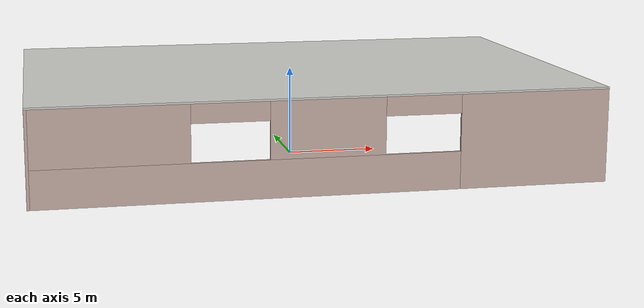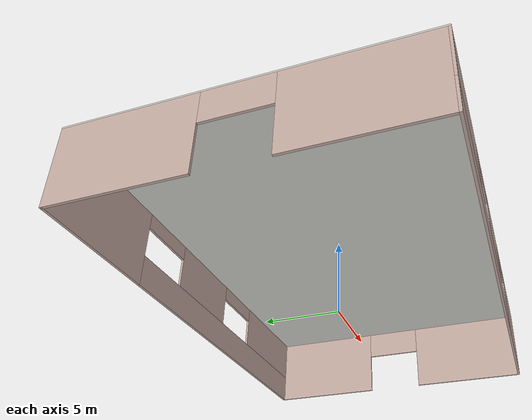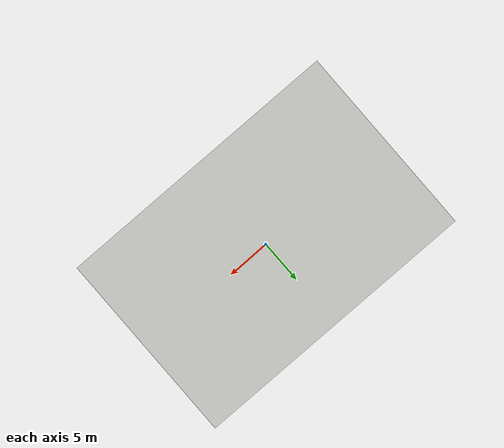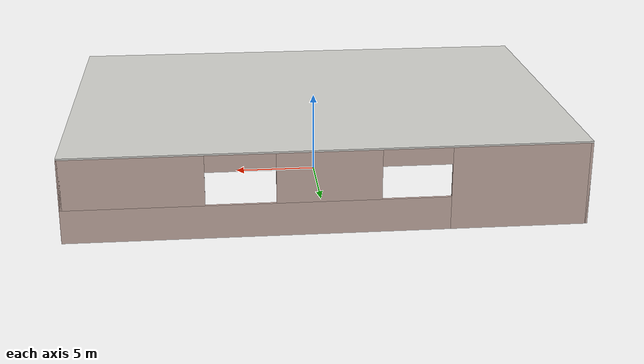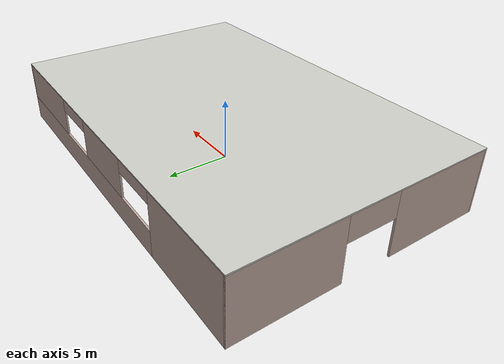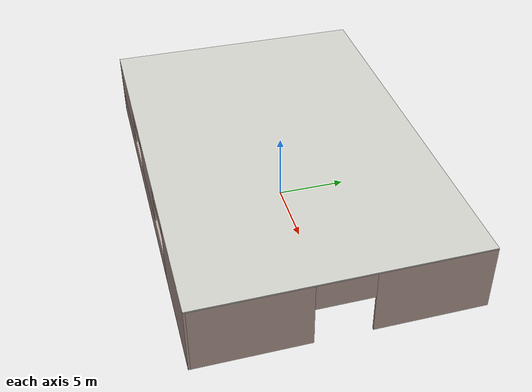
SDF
<?xml version='1.0'?>
<sdf version='1.6'>
  <model name='building'>
    <pose frame=''>0 0 0 0 -0 0</pose>
    <link name='Floor_1'>
      <collision name='Floor_1_Collision'>
        <geometry>
          <box>
            <size>30.15 20.15 0.1</size>
          </box>
        </geometry>
        <pose frame=''>0 0 0.05 0 -0 0</pose>
      </collision>
      <visual name='Floor_1_Visual'>
        <pose frame=''>0 0 0.05 0 -0 0</pose>
        <geometry>
          <box>
            <size>30.15 20.15 0.1</size>
          </box>
        </geometry>
        <material>
          <script>
            <uri>file://media/materials/scripts/gazebo.material</uri>
            <name>Gazebo/CeilingTiled</name>
          </script>
          <ambient>1 1 1 1</ambient>
        </material>
      </visual>
      <pose frame=''>0 0 5 0 -0 0</pose>
    </link>
    <link name='Wall_0'>
      <pose frame=''>0 10 0 0 -0 0</pose>
      <visual name='Wall_0_Visual_0'>
        <pose frame=''>-11.0375 0 2.5 0 -0 0</pose>
        <geometry>
          <box>
            <size>8.075 0.15 5</size>
          </box>
        </geometry>
        <material>
          <script>
            <uri>file://media/materials/scripts/gazebo.material</uri>
            <name>Gazebo/Grey</name>
          </script>
          <ambient>0.760784 0.662745 0.627451 1</ambient>
        </material>
      </visual>
      <collision name='Wall_0_Collision_0'>
        <geometry>
          <box>
            <size>8.075 0.15 5</size>
          </box>
        </geometry>
        <pose frame=''>-11.0375 0 2.5 0 -0 0</pose>
      </collision>
      <visual name='Wall_0_Visual_1'>
        <pose frame=''>4.0375 0 1 0 -0 0</pose>
        <geometry>
          <box>
            <size>22.075 0.15 2</size>
          </box>
        </geometry>
        <material>
          <script>
            <uri>file://media/materials/scripts/gazebo.material</uri>
            <name>Gazebo/Grey</name>
          </script>
          <ambient>0.760784 0.662745 0.627451 1</ambient>
        </material>
      </visual>
      <collision name='Wall_0_Collision_1'>
        <geometry>
          <box>
            <size>22.075 0.15 2</size>
          </box>
        </geometry>
        <pose frame=''>4.0375 0 1 0 -0 0</pose>
      </collision>
      <visual name='Wall_0_Visual_2'>
        <pose frame=''>0 0 3.5 0 -0 0</pose>
        <geometry>
          <box>
            <size>6 0.15 3</size>
          </box>
        </geometry>
        <material>
          <script>
            <uri>file://media/materials/scripts/gazebo.material</uri>
            <name>Gazebo/Grey</name>
          </script>
          <ambient>0.760784 0.662745 0.627451 1</ambient>
        </material>
      </visual>
      <collision name='Wall_0_Collision_2'>
        <geometry>
          <box>
            <size>6 0.15 3</size>
          </box>
        </geometry>
        <pose frame=''>0 0 3.5 0 -0 0</pose>
      </collision>
      <visual name='Wall_0_Visual_3'>
        <pose frame=''>11.0375 0 3.5 0 -0 0</pose>
        <geometry>
          <box>
            <size>8.075 0.15 3</size>
          </box>
        </geometry>
        <material>
          <script>
            <uri>file://media/materials/scripts/gazebo.material</uri>
            <name>Gazebo/Grey</name>
          </script>
          <ambient>0.760784 0.662745 0.627451 1</ambient>
        </material>
      </visual>
      <collision name='Wall_0_Collision_3'>
        <geometry>
          <box>
            <size>8.075 0.15 3</size>
          </box>
        </geometry>
        <pose frame=''>11.0375 0 3.5 0 -0 0</pose>
      </collision>
      <visual name='Wall_0_Visual_4'>
        <pose frame=''>-5 0 4.5 0 -0 0</pose>
        <geometry>
          <box>
            <size>4 0.15 1</size>
          </box>
        </geometry>
        <material>
          <script>
            <uri>file://media/materials/scripts/gazebo.material</uri>
            <name>Gazebo/Grey</name>
          </script>
          <ambient>0.760784 0.662745 0.627451 1</ambient>
        </material>
      </visual>
      <collision name='Wall_0_Collision_4'>
        <geometry>
          <box>
            <size>4 0.15 1</size>
          </box>
        </geometry>
        <pose frame=''>-5 0 4.5 0 -0 0</pose>
      </collision>
      <visual name='Wall_0_Visual_5'>
        <pose frame=''>5 0 4.5 0 -0 0</pose>
        <geometry>
          <box>
            <size>4 0.15 1</size>
          </box>
        </geometry>
        <material>
          <script>
            <uri>file://media/materials/scripts/gazebo.material</uri>
            <name>Gazebo/Grey</name>
          </script>
          <ambient>0.760784 0.662745 0.627451 1</ambient>
        </material>
      </visual>
      <collision name='Wall_0_Collision_5'>
        <geometry>
          <box>
            <size>4 0.15 1</size>
          </box>
        </geometry>
        <pose frame=''>5 0 4.5 0 -0 0</pose>
      </collision>
    </link>
    <link name='Wall_1'>
      <pose frame=''>15 0 0 0 0 -1.5708</pose>
      <visual name='Wall_1_Visual_0'>
        <pose frame=''>-6.0375 0 2.5 0 -0 0</pose>
        <geometry>
          <box>
            <size>8.075 0.15 5</size>
          </box>
        </geometry>
        <material>
          <script>
            <uri>file://media/materials/scripts/gazebo.material</uri>
            <name>Gazebo/Grey</name>
          </script>
          <ambient>0.760784 0.662745 0.627451 1</ambient>
        </material>
      </visual>
      <collision name='Wall_1_Collision_0'>
        <geometry>
          <box>
            <size>8.075 0.15 5</size>
          </box>
        </geometry>
        <pose frame=''>-6.0375 0 2.5 0 -0 0</pose>
      </collision>
      <visual name='Wall_1_Visual_1'>
        <pose frame=''>6.0375 0 2.5 0 -0 0</pose>
        <geometry>
          <box>
            <size>8.075 0.15 5</size>
          </box>
        </geometry>
        <material>
          <script>
            <uri>file://media/materials/scripts/gazebo.material</uri>
            <name>Gazebo/Grey</name>
          </script>
          <ambient>0.760784 0.662745 0.627451 1</ambient>
        </material>
      </visual>
      <collision name='Wall_1_Collision_1'>
        <geometry>
          <box>
            <size>8.075 0.15 5</size>
          </box>
        </geometry>
        <pose frame=''>6.0375 0 2.5 0 -0 0</pose>
      </collision>
      <visual name='Wall_1_Visual_2'>
        <pose frame=''>0 0 4 0 -0 0</pose>
        <geometry>
          <box>
            <size>4 0.15 2</size>
          </box>
        </geometry>
        <material>
          <script>
            <uri>file://media/materials/scripts/gazebo.material</uri>
            <name>Gazebo/Grey</name>
          </script>
          <ambient>0.760784 0.662745 0.627451 1</ambient>
        </material>
      </visual>
      <collision name='Wall_1_Collision_2'>
        <geometry>
          <box>
            <size>4 0.15 2</size>
          </box>
        </geometry>
        <pose frame=''>0 0 4 0 -0 0</pose>
      </collision>
    </link>
    <link name='Wall_2'>
      <pose frame=''>0 -10 0 0 -0 3.14159</pose>
      <visual name='Wall_2_Visual_0'>
        <pose frame=''>-11.0375 0 2.5 0 -0 0</pose>
        <geometry>
          <box>
            <size>8.075 0.15 5</size>
          </box>
        </geometry>
        <material>
          <script>
            <uri>file://media/materials/scripts/gazebo.material</uri>
            <name>Gazebo/Grey</name>
          </script>
          <ambient>0.760784 0.662745 0.627451 1</ambient>
        </material>
      </visual>
      <collision name='Wall_2_Collision_0'>
        <geometry>
          <box>
            <size>8.075 0.15 5</size>
          </box>
        </geometry>
        <pose frame=''>-11.0375 0 2.5 0 -0 0</pose>
      </collision>
      <visual name='Wall_2_Visual_1'>
        <pose frame=''>4.0375 0 1 0 -0 0</pose>
        <geometry>
          <box>
            <size>22.075 0.15 2</size>
          </box>
        </geometry>
        <material>
          <script>
            <uri>file://media/materials/scripts/gazebo.material</uri>
            <name>Gazebo/Grey</name>
          </script>
          <ambient>0.760784 0.662745 0.627451 1</ambient>
        </material>
      </visual>
      <collision name='Wall_2_Collision_1'>
        <geometry>
          <box>
            <size>22.075 0.15 2</size>
          </box>
        </geometry>
        <pose frame=''>4.0375 0 1 0 -0 0</pose>
      </collision>
      <visual name='Wall_2_Visual_2'>
        <pose frame=''>0 0 3.5 0 -0 0</pose>
        <geometry>
          <box>
            <size>6 0.15 3</size>
          </box>
        </geometry>
        <material>
          <script>
            <uri>file://media/materials/scripts/gazebo.material</uri>
            <name>Gazebo/Grey</name>
          </script>
          <ambient>0.760784 0.662745 0.627451 1</ambient>
        </material>
      </visual>
      <collision name='Wall_2_Collision_2'>
        <geometry>
          <box>
            <size>6 0.15 3</size>
          </box>
        </geometry>
        <pose frame=''>0 0 3.5 0 -0 0</pose>
      </collision>
      <visual name='Wall_2_Visual_3'>
        <pose frame=''>11.0375 0 3.5 0 -0 0</pose>
        <geometry>
          <box>
            <size>8.075 0.15 3</size>
          </box>
        </geometry>
        <material>
          <script>
            <uri>file://media/materials/scripts/gazebo.material</uri>
            <name>Gazebo/Grey</name>
          </script>
          <ambient>0.760784 0.662745 0.627451 1</ambient>
        </material>
      </visual>
      <collision name='Wall_2_Collision_3'>
        <geometry>
          <box>
            <size>8.075 0.15 3</size>
          </box>
        </geometry>
        <pose frame=''>11.0375 0 3.5 0 -0 0</pose>
      </collision>
      <visual name='Wall_2_Visual_4'>
        <pose frame=''>-5 0 4.5 0 -0 0</pose>
        <geometry>
          <box>
            <size>4 0.15 1</size>
          </box>
        </geometry>
        <material>
          <script>
            <uri>file://media/materials/scripts/gazebo.material</uri>
            <name>Gazebo/Grey</name>
          </script>
          <ambient>0.760784 0.662745 0.627451 1</ambient>
        </material>
      </visual>
      <collision name='Wall_2_Collision_4'>
        <geometry>
          <box>
            <size>4 0.15 1</size>
          </box>
        </geometry>
        <pose frame=''>-5 0 4.5 0 -0 0</pose>
      </collision>
      <visual name='Wall_2_Visual_5'>
        <pose frame=''>5 0 4.5 0 -0 0</pose>
        <geometry>
          <box>
            <size>4 0.15 1</size>
          </box>
        </geometry>
        <material>
          <script>
            <uri>file://media/materials/scripts/gazebo.material</uri>
            <name>Gazebo/Grey</name>
          </script>
          <ambient>0.760784 0.662745 0.627451 1</ambient>
        </material>
      </visual>
      <collision name='Wall_2_Collision_5'>
        <geometry>
          <box>
            <size>4 0.15 1</size>
          </box>
        </geometry>
        <pose frame=''>5 0 4.5 0 -0 0</pose>
      </collision>
    </link>
    <link name='Wall_3'>
      <pose frame=''>-15 0 0 0 -0 1.5708</pose>
      <visual name='Wall_3_Visual_0'>
        <pose frame=''>-6.0375 0 2.5 0 -0 0</pose>
        <geometry>
          <box>
            <size>8.075 0.15 5</size>
          </box>
        </geometry>
        <material>
          <script>
            <uri>file://media/materials/scripts/gazebo.material</uri>
            <name>Gazebo/Grey</name>
          </script>
          <ambient>0.760784 0.662745 0.627451 1</ambient>
        </material>
      </visual>
      <collision name='Wall_3_Collision_0'>
        <geometry>
          <box>
            <size>8.075 0.15 5</size>
          </box>
        </geometry>
        <pose frame=''>-6.0375 0 2.5 0 -0 0</pose>
      </collision>
      <visual name='Wall_3_Visual_1'>
        <pose frame=''>6.0375 0 2.5 0 -0 0</pose>
        <geometry>
          <box>
            <size>8.075 0.15 5</size>
          </box>
        </geometry>
        <material>
          <script>
            <uri>file://media/materials/scripts/gazebo.material</uri>
            <name>Gazebo/Grey</name>
          </script>
          <ambient>0.760784 0.662745 0.627451 1</ambient>
        </material>
      </visual>
      <collision name='Wall_3_Collision_1'>
        <geometry>
          <box>
            <size>8.075 0.15 5</size>
          </box>
        </geometry>
        <pose frame=''>6.0375 0 2.5 0 -0 0</pose>
      </collision>
      <visual name='Wall_3_Visual_2'>
        <pose frame=''>0 0 4 0 -0 0</pose>
        <geometry>
          <box>
            <size>4 0.15 2</size>
          </box>
        </geometry>
        <material>
          <script>
            <uri>file://media/materials/scripts/gazebo.material</uri>
            <name>Gazebo/Grey</name>
          </script>
          <ambient>0.760784 0.662745 0.627451 1</ambient>
        </material>
      </visual>
      <collision name='Wall_3_Collision_2'>
        <geometry>
          <box>
            <size>4 0.15 2</size>
          </box>
        </geometry>
        <pose frame=''>0 0 4 0 -0 0</pose>
      </collision>
    </link>
    <static>1</static>
  </model>
</sdf>
